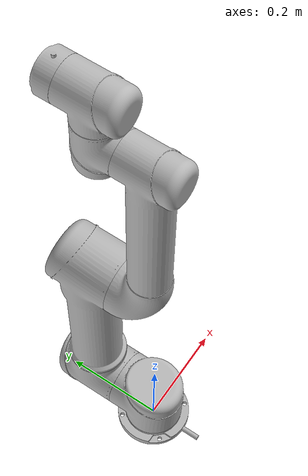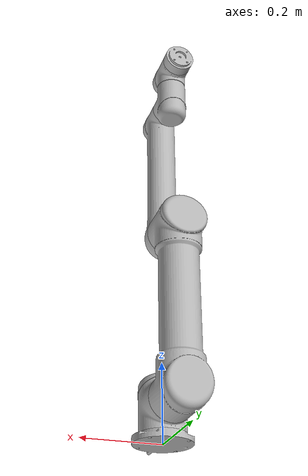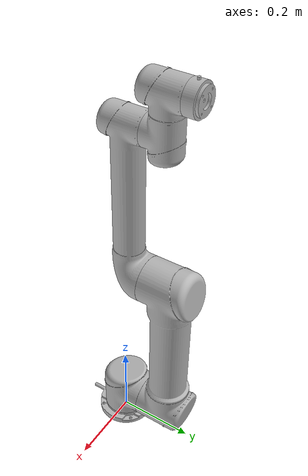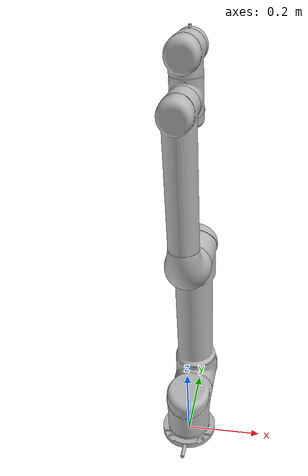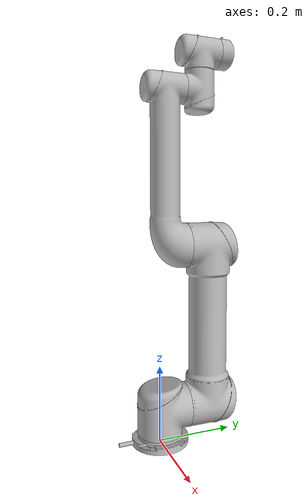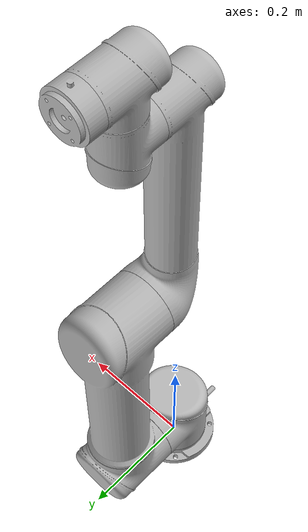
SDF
<?xml version='1.0'?>
<sdf version='1.4'>
  <model name='ur5'>
    <link name='base_link'>
      <pose>0 0 0 0 -0 0</pose>
      <inertial>
        <pose>0 0 0 0 -0 0</pose>
        <mass>4</mass>
        <inertia>
          <ixx>1</ixx>
          <ixy>0</ixy>
          <ixz>0</ixz>
          <iyy>1</iyy>
          <iyz>0</iyz>
          <izz>1</izz>
        </inertia>
      </inertial>
      <collision name='base_link_collision'>
        <pose>0 0 0 0 -0 0</pose>
        <geometry>
          <mesh>
            <scale>1 1 1</scale>
            <uri>package://drake_models/ur_description/meshes/ur5/collision/Base.obj</uri>
          </mesh>
        </geometry>
      </collision>
      <visual name='base_link_visual'>
        <pose>0 0 0.003 0 -0 2.35619</pose>
        <geometry>
          <mesh>
            <scale>1 1 1</scale>
            <uri>package://drake_models/ur_description/meshes/ur5/visual/Base.obj</uri>
          </mesh>
        </geometry>
      </visual>
    </link>
    <link name='shoulder_link'>
      <pose relative_to='base_link'>0 0 0.089159 0 0 0</pose>
      <inertial>
        <pose>0 0.00193 -0.02561 0 -0 0</pose>
        <mass>3.7</mass>
        <inertia>
          <ixx>1</ixx>
          <ixy>0</ixy>
          <ixz>0</ixz>
          <iyy>1</iyy>
          <iyz>0</iyz>
          <izz>1</izz>
        </inertia>
      </inertial>
      <collision name='shoulder_link_collision'>
        <pose>0 0 0 0 -0 0</pose>
        <geometry>
          <mesh>
            <scale>1 1 1</scale>
            <uri>package://drake_models/ur_description/meshes/ur5/collision/Shoulder.obj</uri>
          </mesh>
        </geometry>
      </collision>
      <visual name='shoulder_link_visual'>
        <pose>0 0 0 0 -0 0</pose>
        <geometry>
          <mesh>
            <scale>1 1 1</scale>
            <uri>package://drake_models/ur_description/meshes/ur5/visual/Shoulder.obj</uri>
          </mesh>
        </geometry>
      </visual>
    </link>
    <joint name='shoulder_pan_joint' type='revolute'>
      <child>shoulder_link</child>
      <parent>base_link</parent>
      <axis>
        <xyz>0 0 1</xyz>
        <limit>
          <lower>-6.28319</lower>
          <upper>6.28319</upper>
          <effort>10</effort>
          <velocity>3.14159</velocity>
        </limit>
        <dynamics>
          <damping>10</damping>
        </dynamics>
      </axis>
    </joint>
    <link name='upper_arm_link'>
      <pose relative_to='shoulder_link'>0 0.13585 0. 0. 0. 0.</pose>
      <inertial>
        <pose>0 -0.024201 0.2125 0 -0 0</pose>
        <mass>8.393</mass>
        <inertia>
          <ixx>1</ixx>
          <ixy>0</ixy>
          <ixz>0</ixz>
          <iyy>1</iyy>
          <iyz>0</iyz>
          <izz>1</izz>
        </inertia>
      </inertial>
      <collision name='upper_arm_link_collision'>
        <pose>0 0 0 0 -0 0</pose>
        <geometry>
          <mesh>
            <scale>1 1 1</scale>
            <uri>package://drake_models/ur_description/meshes/ur5/collision/UpperArm.obj</uri>
          </mesh>
        </geometry>
      </collision>
      <visual name='upper_arm_link_visual'>
        <pose>0 0 0 0 -0 0</pose>
        <geometry>
          <mesh>
            <scale>1 1 1</scale>
            <uri>package://drake_models/ur_description/meshes/ur5/visual/UpperArm.obj</uri>
          </mesh>
        </geometry>
      </visual>

    </link>
    <joint name='shoulder_lift_joint' type='revolute'>
      <child>upper_arm_link</child>
      <parent>shoulder_link</parent>
      <axis>
        <xyz>0 1 0</xyz>
        <limit>
          <lower>-6.28319</lower>
          <upper>6.28319</upper>
          <effort>10</effort>
          <velocity>3.14159</velocity>
        </limit>
        <dynamics>
          <damping>10</damping>
        </dynamics>
      </axis>
    </joint>
    <link name='forearm_link'>
      <pose relative_to='upper_arm_link'>0. -0.1197 0.425 0. 0. 0.</pose>
      <inertial>
        <pose>0 0.0265 0.11993 0 -0 0</pose>
        <mass>2.275</mass>
        <inertia>
          <ixx>1</ixx>
          <ixy>0</ixy>
          <ixz>0</ixz>
          <iyy>1</iyy>
          <iyz>0</iyz>
          <izz>1</izz>
        </inertia>
      </inertial>
      <collision name='forearm_link_collision'>
        <pose>0 0 0 0 -0 0</pose>
        <geometry>
          <mesh>
            <scale>1 1 1</scale>
            <uri>package://drake_models/ur_description/meshes/ur5/collision/Forearm.obj</uri>
          </mesh>
        </geometry>
      </collision>
      <visual name='forearm_link_visual'>
        <pose>0 0 0 0 -0 0</pose>
        <geometry>
          <mesh>
            <scale>1 1 1</scale>
            <uri>package://drake_models/ur_description/meshes/ur5/visual/Forearm.obj</uri>
          </mesh>
        </geometry>
      </visual>
    </link>
    <joint name='elbow_joint' type='revolute'>
      <child>forearm_link</child>
      <parent>upper_arm_link</parent>
      <axis>
        <xyz>0 1 0</xyz>
        <limit>
          <lower>-6.28319</lower>
          <upper>6.28319</upper>
          <effort>10</effort>
          <velocity>3.14159</velocity>
        </limit>
        <dynamics>
          <damping>10</damping>
        </dynamics>
      </axis>
    </joint>
    <link name='wrist_1_link'>
      <pose relative_to='forearm_link'>0. 0. 0.39225 0 0 0</pose>
      <inertial>
        <pose>0 0.110949 0.01634 0 -0 0</pose>
        <mass>1.219</mass>
        <inertia>
          <ixx>1</ixx>
          <ixy>0</ixy>
          <ixz>0</ixz>
          <iyy>1</iyy>
          <iyz>0</iyz>
          <izz>1</izz>
        </inertia>
      </inertial>
      <collision name='wrist_1_link_collision'>
        <pose>0 0.093 0 3.14159 1.57079 3.14159</pose>
        <geometry>
          <mesh>
            <scale>1 1 1</scale>
            <uri>package://drake_models/ur_description/meshes/ur5/collision/Wrist1.obj</uri>
          </mesh>
        </geometry>
      </collision>
      <visual name='wrist_1_link_visual'>
        <pose>0 0.093 0 3.14159 1.57079 3.14159</pose>
        <geometry>
          <mesh>
            <scale>1 1 1</scale>
            <uri>package://drake_models/ur_description/meshes/ur5/visual/Wrist1.obj</uri>
          </mesh>
        </geometry>
      </visual>

    </link>
    <joint name='wrist_1_joint' type='revolute'>
      <child>wrist_1_link</child>
      <parent>forearm_link</parent>
      <axis>
        <xyz>0 1 0</xyz>
        <limit>
          <lower>-3.14159</lower>
          <upper>3.14159</upper>
          <effort>10</effort>
          <velocity>3.14159</velocity>
        </limit>
        <dynamics>
          <damping>10</damping>
        </dynamics>
      </axis>
    </joint>
    <link name='wrist_2_link'>
      <pose relative_to="wrist_1_link">.0 0.093 .0 .0 .0 .0</pose>
      <inertial>
        <pose>0 0.0018 0.11099 0 -0 0</pose>
        <mass>1.219</mass>
        <inertia>
          <ixx>1</ixx>
          <ixy>0</ixy>
          <ixz>0</ixz>
          <iyy>1</iyy>
          <iyz>0</iyz>
          <izz>1</izz>
        </inertia>
      </inertial>
      <collision name='wrist_2_link_collision'>
        <pose>0 0 0.09465 0 -0 0</pose>
        <geometry>
          <mesh>
            <scale>1 1 1</scale>
            <uri>package://drake_models/ur_description/meshes/ur5/collision/Wrist2.obj</uri>
          </mesh>
        </geometry>
      </collision>
      <visual name='wrist_2_link_visual'>
        <pose>0 0 0.09465 0 -0 0</pose>
        <geometry>
          <mesh>
            <scale>1 1 1</scale>
            <uri>package://drake_models/ur_description/meshes/ur5/visual/Wrist2.obj</uri>
          </mesh>
        </geometry>
      </visual>

    </link>
    <joint name='wrist_2_joint' type='revolute'>
      <child>wrist_2_link</child>
      <parent>wrist_1_link</parent>
      <axis>
        <xyz>0 0 -1</xyz>
        <limit>
          <lower>-3.14159</lower>
          <upper>3.14159</upper>
          <effort>10</effort>
          <velocity>3.14159</velocity>
        </limit>
        <dynamics>
          <damping>10</damping>
        </dynamics>
      </axis>
    </joint>
    <link name='wrist_3_link'>
      <pose relative_to='wrist_2_link'>0 0 0.09465 0 0 0 </pose>
      <inertial>
        <pose>0 0.001159 0 0 -0 0</pose>
        <mass>0.1879</mass>
        <inertia>
          <ixx>1</ixx>
          <ixy>0</ixy>
          <ixz>0</ixz>
          <iyy>1</iyy>
          <iyz>0</iyz>
          <izz>1</izz>
        </inertia>
      </inertial>
      <collision name='wrist_3_link_collision'>
        <pose>0 0 0 0 -0 0</pose>
        <geometry>
          <mesh>
            <scale>1 1 1</scale>
            <uri>package://drake_models/ur_description/meshes/ur5/collision/Wrist3.obj</uri>
          </mesh>
        </geometry>
      </collision>
      <visual name='wrist_3_link_visual'>
        <pose>0 0 0 0 -0 0</pose>
        <geometry>
          <mesh>
            <scale>1 1 1</scale>
            <uri>package://drake_models/ur_description/meshes/ur5/visual/Wrist3.obj</uri>
          </mesh>
        </geometry>
      </visual>
    </link>
    <joint name='wrist_3_joint' type='revolute'>
      <child>wrist_3_link</child>
      <parent>wrist_2_link</parent>
      <axis>
        <xyz>0 1 0</xyz>
        <limit>
          <lower>-3.14159</lower>
          <upper>3.14159</upper>
          <effort>10</effort>
          <velocity>3.14159</velocity>
        </limit>
        <dynamics>
          <damping>10</damping>
        </dynamics>
      </axis>
    </joint>
  </model>
</sdf>
